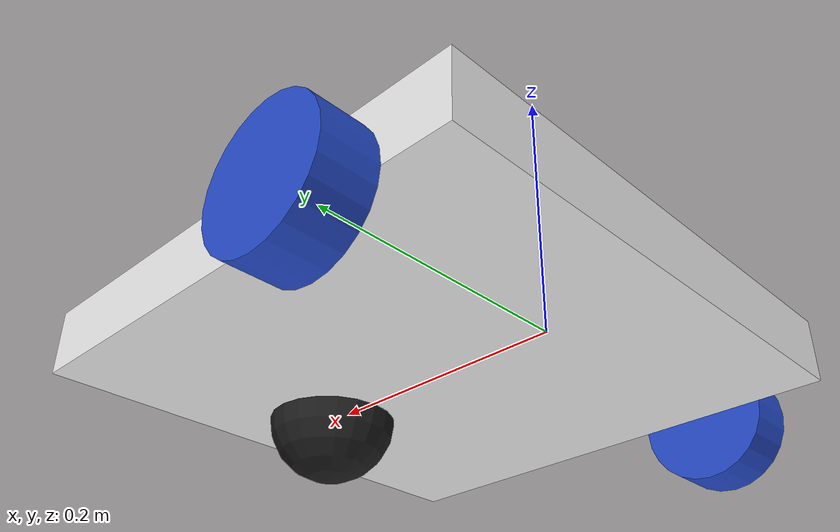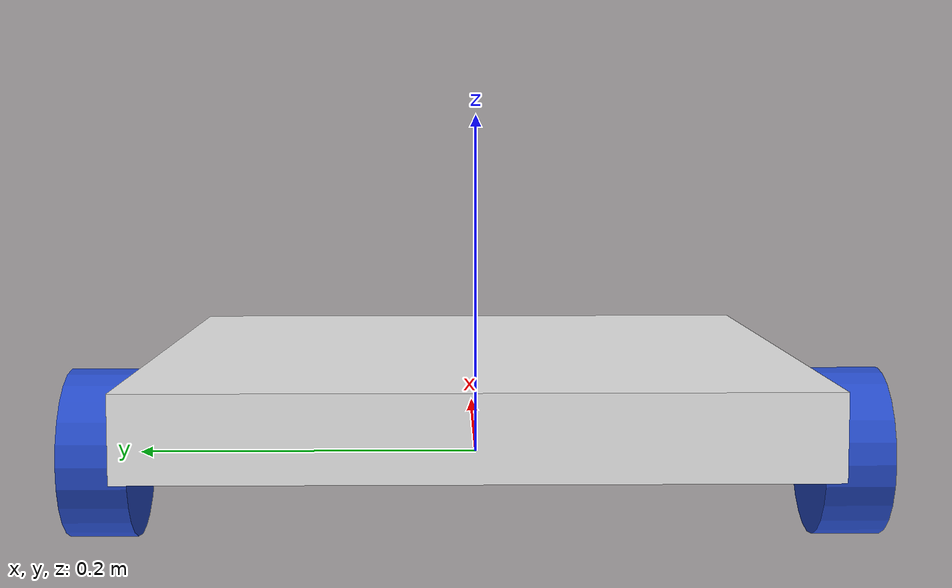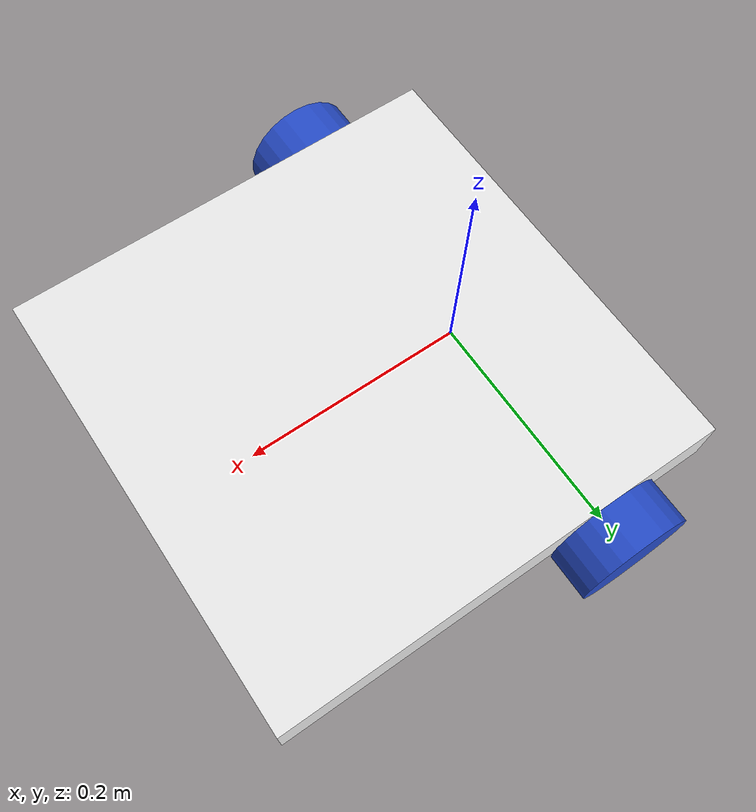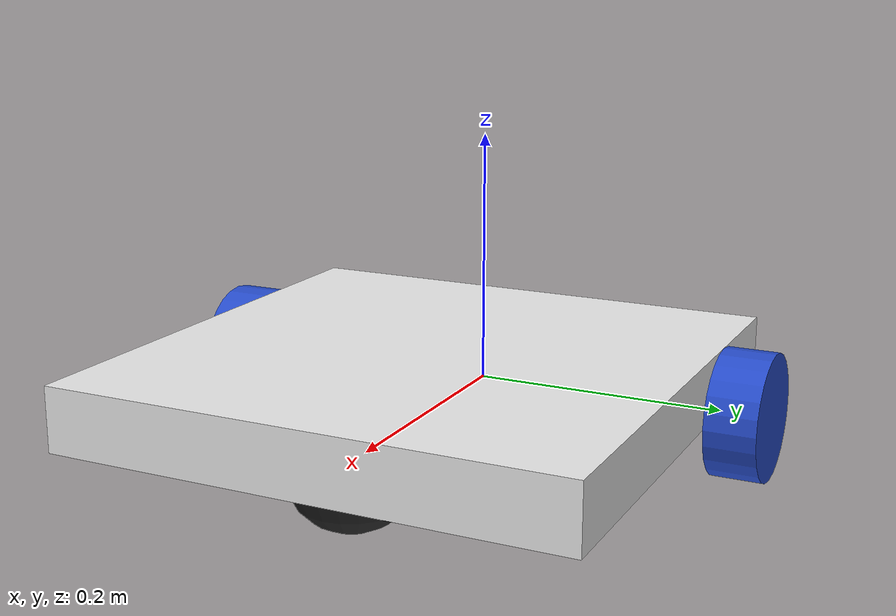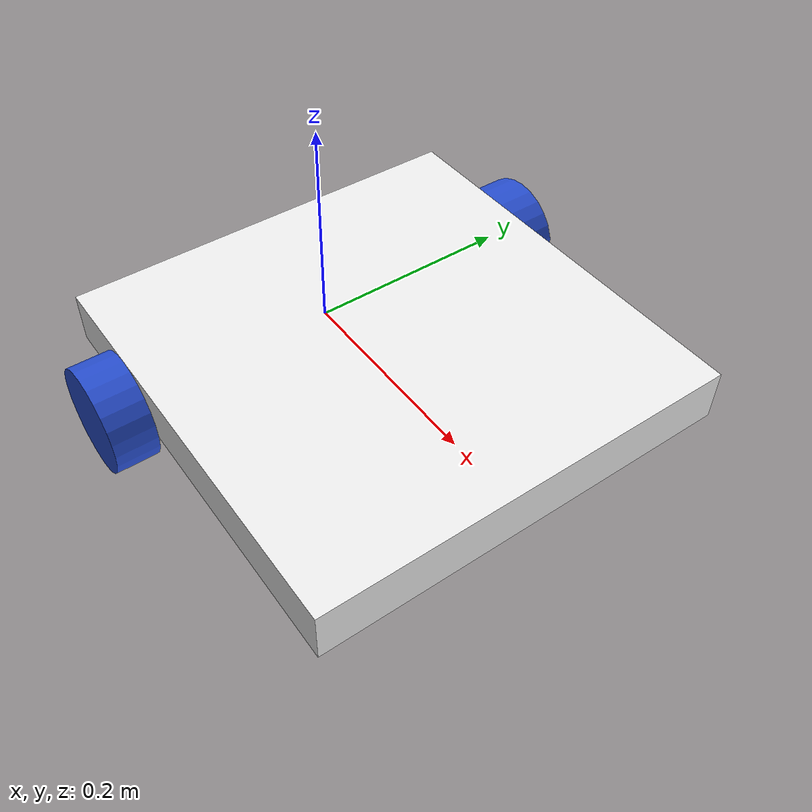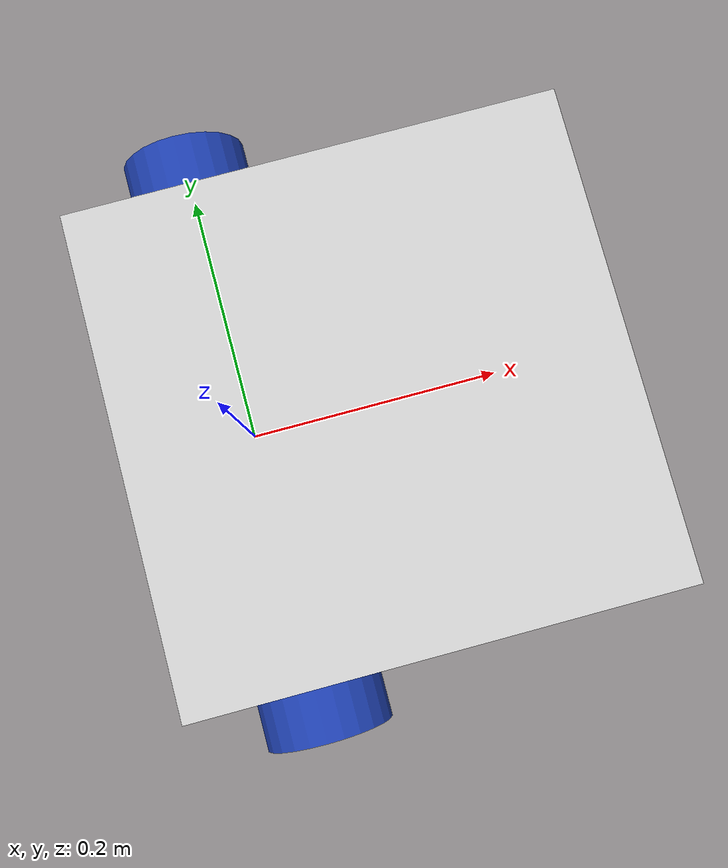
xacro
<?xml version="1.0"?>
<robot xmlns:xacro="http://www.ros.org/wiki/xacro">

    <!-- Example link -->
    <xacro:include filename="inertial_macros.xacro"/>

    <xacro:property name="rad_w" value="0.05"/>
    <xacro:property name="le_w" value="0.04"/>
    <xacro:property name="ly" value="0.4"/>
    <xacro:property name="lx" value="0.4"/>
    <xacro:property name="lz" value="0.05"/>

    <!-- Example link -->
    <link name="base_link">
    </link>

    <joint name="base_link" type="fixed">
        <parent link="base_link"/>
        <child link="chassis"/>
        <origin xyz="-0.1 0 0"/>
    </joint>

    <!-- chassis link -->
    <link name="chassis">
        <visual>
            <origin xyz="${lx/2} 0 ${lz/2}"/>
            <geometry>
                <box size="${lx} ${ly} ${lz}"/>
            </geometry>
            <material name="white"/>
        </visual>
        <collision>
            <origin xyz="${lx/2} 0 ${lz/2}"/>
            <geometry>
               <box size="${lx} ${ly} ${lz}"/>
            </geometry>
        </collision>
        <xacro:inertial_box mass="0.5" x="${lx}" y="${ly}" z="${lz}">
            <origin xyz="${lx/2} 0 ${lz/2}" rpy="0 0 0"/>
        </xacro:inertial_box>
    </link>

    <!-- left wheel joint -->
    <joint name="left_wheel_joint" type="continuous">
        <parent link="chassis"/>
        <child link="left_wheel"/>
        <origin xyz="0.1 ${ly/2+le_w/2} 0" rpy="-${pi/2} 0 0"/>
        <axis xyz="0 0 1"/>
    </joint>

    <!-- left wheel link -->
    <link name="left_wheel">
        <visual>
            <geometry>
                <cylinder radius="${rad_w}" length="${le_w}"/>
            </geometry>
            <material name="blue"/>
        </visual>
        <collision>
            <geometry>
                <cylinder radius="${rad_w}" length="${le_w}"/>
            </geometry>
        </collision>
        <xacro:inertial_cylinder mass="0.1" length="${le_w}" radius="${rad_w}">
            <origin xyz="0 0 0" rpy="0 0 0"/>
        </xacro:inertial_cylinder>
    </link>

    <!-- right wheel joint -->
    <joint name="right_wheel_joint" type="continuous">
        <parent link="chassis"/>
        <child link="right_wheel"/>
        <origin xyz="0.1 -${ly/2+le_w/2} 0" rpy="${pi/2} 0 0"/>
        <axis xyz="0 0 -1"/>
    </joint>

    <!-- right wheel link -->
    <link name="right_wheel">
        <visual>
            <geometry>
                <cylinder radius="${rad_w}" length="${le_w}"/>
            </geometry>
            <material name="blue"/>
        </visual>
        <collision>
            <geometry>
                <cylinder radius="${rad_w}" length="${le_w}"/>
            </geometry>
        </collision>
        <xacro:inertial_cylinder mass="0.1" length="${le_w}" radius="${rad_w}">
            <origin xyz="0 0 0" rpy="0 0 0"/>
        </xacro:inertial_cylinder>
    </link>

    <!-- caster wheel joint -->
    <joint name="caster_wheel_joint" type="fixed">
        <parent link="chassis"/>
        <child link="caster_wheel"/>
        <origin xyz="${lx-lx/5} 0 0"/>
    </joint>

    <!-- left wheel link -->
    <link name="caster_wheel">
        <visual>
            <geometry>
                <sphere radius="0.05"/>
            </geometry>
            <material name="black"/>
        </visual>
        <collision>
            <geometry>
                <sphere radius="0.05"/>
            </geometry>
        </collision>
        <xacro:inertial_sphere mass="0.1" radius="0.05">
            <origin xyz="0 0 0" rpy="0 0 0"/>
        </xacro:inertial_sphere>
    </link>

</robot>
